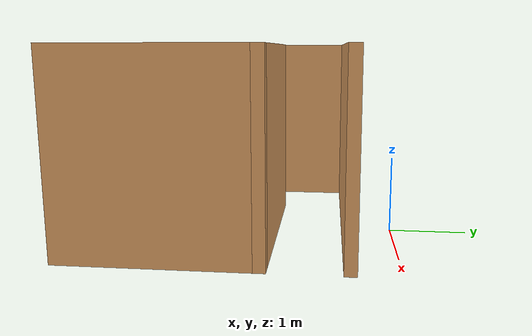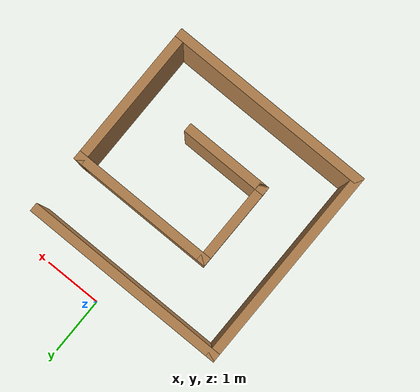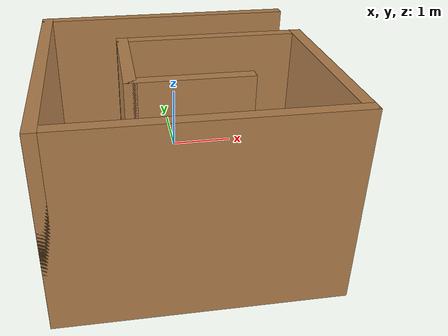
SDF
<?xml version='1.0'?>
<sdf version='1.7'>
  <model name='laberint'>
    <pose>-0.215 -2.0025 0 0 -0 0</pose>
    <link name='Wall_0'>
      <collision name='Wall_0_Collision'>
        <geometry>
          <box>
            <size>3.5 0.15 2.5</size>
          </box>
        </geometry>
        <pose>0 0 1.25 0 -0 0</pose>
      </collision>
      <visual name='Wall_0_Visual'>
        <pose>0 0 1.25 0 -0 0</pose>
        <geometry>
          <box>
            <size>3.5 0.15 2.5</size>
          </box>
        </geometry>
        <material>
          <script>
            <uri>file://media/materials/scripts/gazebo.material</uri>
            <name>Gazebo/Wood</name>
          </script>
          <ambient>1 1 1 1</ambient>
        </material>
        <meta>
          <layer>0</layer>
        </meta>
      </visual>
      <pose>-0 1.4225 0 0 -0 3.14159</pose>
    </link>
    <link name='Wall_2'>
      <collision name='Wall_2_Collision'>
        <geometry>
          <box>
            <size>3.5 0.15 2.5</size>
          </box>
        </geometry>
        <pose>0 0 1.25 0 -0 0</pose>
      </collision>
      <visual name='Wall_2_Visual'>
        <pose>0 0 1.25 0 -0 0</pose>
        <geometry>
          <box>
            <size>3.5 0.15 2.5</size>
          </box>
        </geometry>
        <material>
          <script>
            <uri>file://media/materials/scripts/gazebo.material</uri>
            <name>Gazebo/Wood</name>
          </script>
          <ambient>1 1 1 1</ambient>
        </material>
        <meta>
          <layer>0</layer>
        </meta>
      </visual>
      <pose>-1.675 -0.2525 0 0 -0 -1.5708</pose>
    </link>
    <link name='Wall_3'>
      <collision name='Wall_3_Collision'>
        <geometry>
          <box>
            <size>3.5 0.15 2.5</size>
          </box>
        </geometry>
        <pose>0 0 1.25 0 -0 0</pose>
      </collision>
      <visual name='Wall_3_Visual'>
        <pose>0 0 1.25 0 -0 0</pose>
        <geometry>
          <box>
            <size>3.5 0.15 2.5</size>
          </box>
        </geometry>
        <material>
          <script>
            <uri>file://media/materials/scripts/gazebo.material</uri>
            <name>Gazebo/Wood</name>
          </script>
          <ambient>1 1 1 1</ambient>
        </material>
        <meta>
          <layer>0</layer>
        </meta>
      </visual>
      <pose>-0 -1.9275 0 0 -0 0</pose>
    </link>
    <link name='Wall_5'>
      <collision name='Wall_5_Collision'>
        <geometry>
          <box>
            <size>2.5 0.15 2.5</size>
          </box>
        </geometry>
        <pose>0 0 1.25 0 -0 0</pose>
      </collision>
      <visual name='Wall_5_Visual'>
        <pose>0 0 1.25 0 -0 0</pose>
        <geometry>
          <box>
            <size>2.5 0.15 2.5</size>
          </box>
        </geometry>
        <material>
          <script>
            <uri>file://media/materials/scripts/gazebo.material</uri>
            <name>Gazebo/Wood</name>
          </script>
          <ambient>1 1 1 1</ambient>
        </material>
        <meta>
          <layer>0</layer>
        </meta>
      </visual>
      <pose>1.675 -0.7525 0 0 -0 1.5708</pose>
    </link>
    <link name='Wall_6'>
      <collision name='Wall_6_Collision'>
        <geometry>
          <box>
            <size>2.5 0.15 2.5</size>
          </box>
        </geometry>
        <pose>0 0 1.25 0 -0 0</pose>
      </collision>
      <visual name='Wall_6_Visual'>
        <pose>0 0 1.25 0 -0 0</pose>
        <geometry>
          <box>
            <size>2.5 0.15 2.5</size>
          </box>
        </geometry>
        <material>
          <script>
            <uri>file://media/materials/scripts/gazebo.material</uri>
            <name>Gazebo/Wood</name>
          </script>
          <ambient>1 1 1 1</ambient>
        </material>
        <meta>
          <layer>0</layer>
        </meta>
      </visual>
      <pose>0.5 0.4225 0 0 -0 3.14159</pose>
    </link>
    <link name='Wall_7'>
      <collision name='Wall_7_Collision'>
        <geometry>
          <box>
            <size>1.5 0.15 2.5</size>
          </box>
        </geometry>
        <pose>0 0 1.25 0 -0 0</pose>
      </collision>
      <visual name='Wall_7_Visual'>
        <pose>0 0 1.25 0 -0 0</pose>
        <geometry>
          <box>
            <size>1.5 0.15 2.5</size>
          </box>
        </geometry>
        <material>
          <script>
            <uri>file://media/materials/scripts/gazebo.material</uri>
            <name>Gazebo/Wood</name>
          </script>
          <ambient>1 1 1 1</ambient>
        </material>
        <meta>
          <layer>0</layer>
        </meta>
      </visual>
      <pose>-0.675 -0.2525 0 0 -0 -1.5708</pose>
    </link>
    <link name='Wall_8'>
      <collision name='Wall_8_Collision'>
        <geometry>
          <box>
            <size>1.5 0.15 2.5</size>
          </box>
        </geometry>
        <pose>0 0 1.25 0 -0 0</pose>
      </collision>
      <visual name='Wall_8_Visual'>
        <pose>0 0 1.25 0 -0 0</pose>
        <geometry>
          <box>
            <size>1.5 0.15 2.5</size>
          </box>
        </geometry>
        <material>
          <script>
            <uri>file://media/materials/scripts/gazebo.material</uri>
            <name>Gazebo/Wood</name>
          </script>
          <ambient>1 1 1 1</ambient>
        </material>
        <meta>
          <layer>0</layer>
        </meta>
      </visual>
      <pose>-0 -0.9275 0 0 -0 0</pose>
    </link>
    <static>1</static>
  </model>
</sdf>
